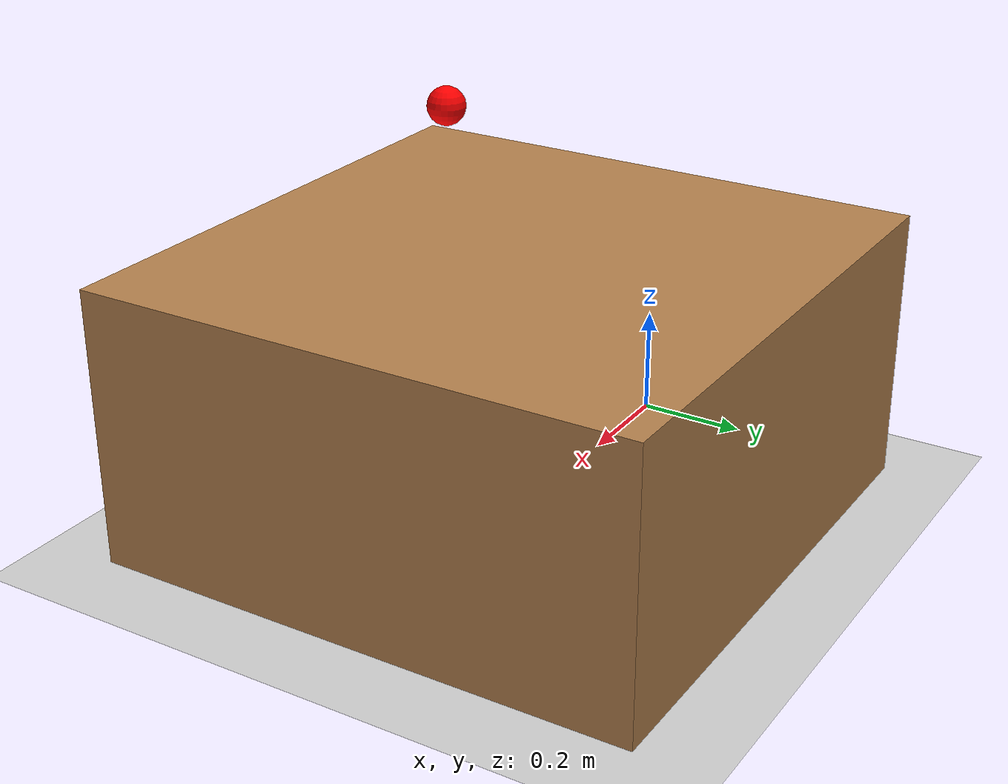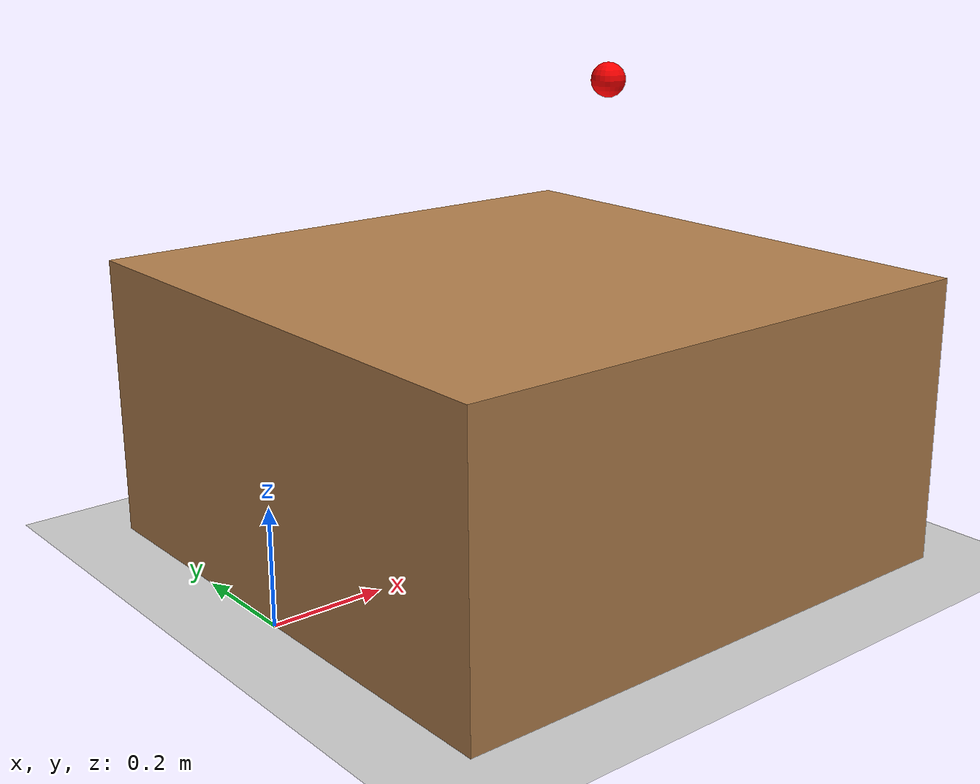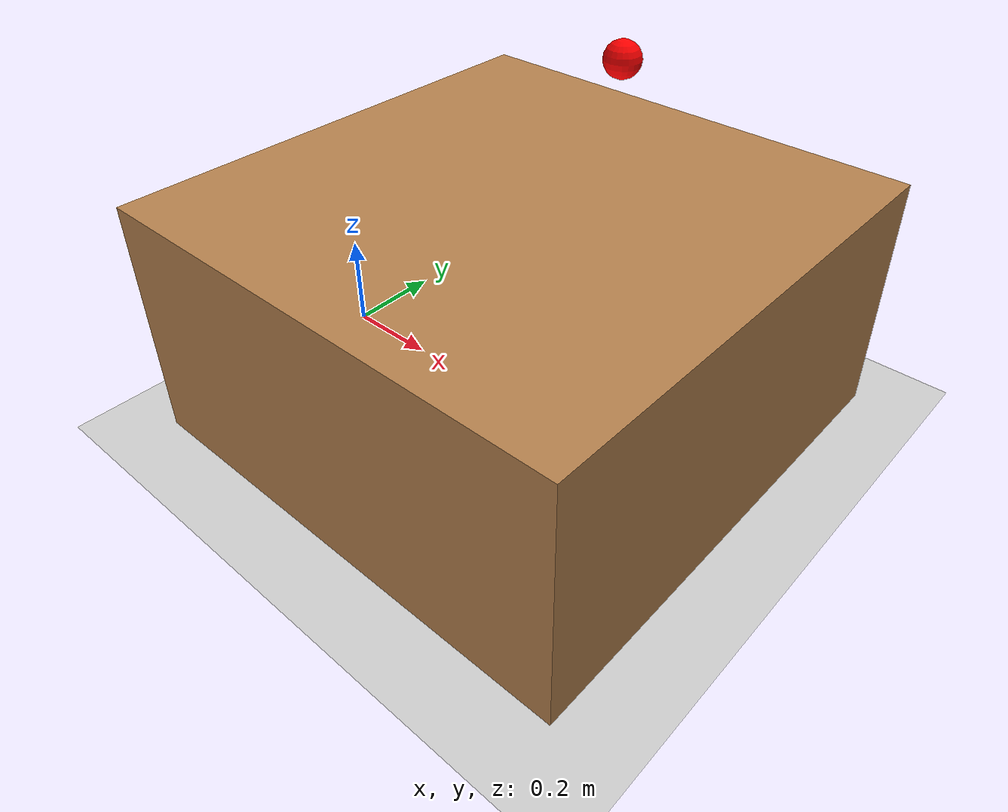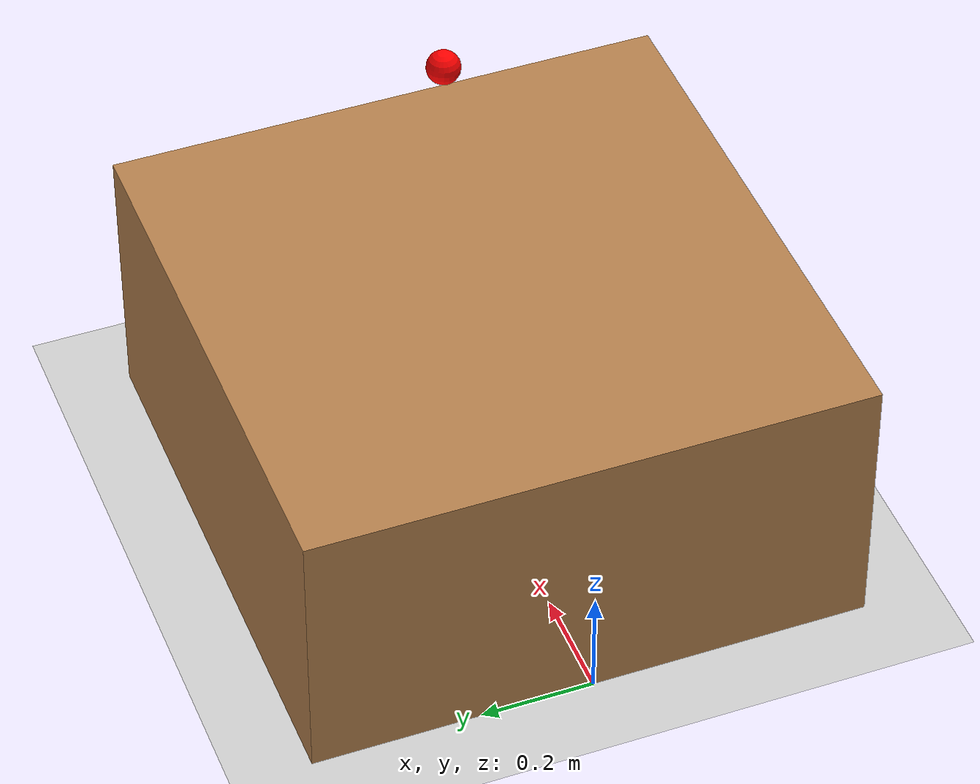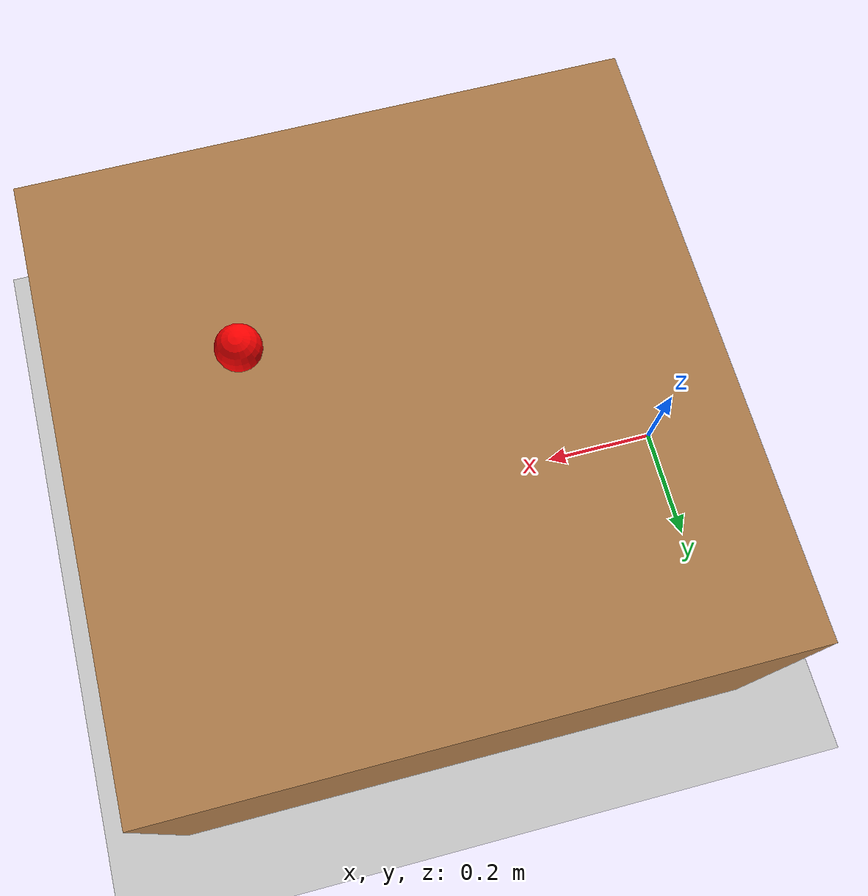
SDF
<?xml version="1.0" ?>
<sdf version="1.5">
  <world name="default">
    <!-- A global light source -->
    <include>
      <uri>model://sun</uri>
    </include>
    <!-- A ground plane -->
    <include>
      <uri>model://ground_plane</uri>
    </include>

    <!-- Ein Block als Tisch -->
    <model name="table">
      <static>true</static>
      <pose>0.5 0 0.25 0 0 0</pose>
      <link name="link">
        <collision name="collision">
          <geometry>
            <box>
              <size>1.0 1.0 0.5</size>
            </box>
          </geometry>
        </collision>
        <visual name="visual">
          <geometry>
            <box>
              <size>1.0 1.0 0.5</size>
            </box>
          </geometry>
          <material>
            <ambient>0.7 0.5 0.3 1</ambient>
            <diffuse>0.7 0.5 0.3 1</diffuse>
            <specular>0.1 0.1 0.1 1</specular>
          </material>
        </visual>
      </link>
    </model>

    <!-- Eine Kugel als Objekt zum Greifen -->
    <model name="ball">
      <pose>0.7 0 0.8 0 0 0</pose>
      <link name="link">
        <collision name="collision">
          <geometry>
            <sphere>
              <radius>0.03</radius>
            </sphere>
          </geometry>
        </collision>
        <visual name="visual">
          <geometry>
            <sphere>
              <radius>0.03</radius>
            </sphere>
          </geometry>
          <material>
            <ambient>1 0 0 1</ambient>
            <diffuse>1 0 0 1</diffuse>
            <specular>0.1 0.1 0.1 1</specular>
          </material>
        </visual>
        <inertial>
          <mass>0.05</mass>
          <inertia>
            <ixx>0.00001</ixx>
            <ixy>0</ixy>
            <ixz>0</ixz>
            <iyy>0.00001</iyy>
            <iyz>0</iyz>
            <izz>0.00001</izz>
          </inertia>
        </inertial>
      </link>
    </model>

    <physics type="ode">
      <real_time_update_rate>1000.0</real_time_update_rate>
      <max_step_size>0.001</max_step_size>
      <real_time_factor>1</real_time_factor>
      <ode>
        <solver>
          <type>quick</type>
          <iters>150</iters>
          <precon_iters>0</precon_iters>
          <sor>1.400000</sor>
          <use_dynamic_moi_rescaling>1</use_dynamic_moi_rescaling>
        </solver>
        <constraints>
          <cfm>0.00001</cfm>
          <erp>0.2</erp>
          <contact_max_correcting_vel>2000.000000</contact_max_correcting_vel>
          <contact_surface_layer>0.01000</contact_surface_layer>
        </constraints>
      </ode>
    </physics>
  </world>
</sdf>
